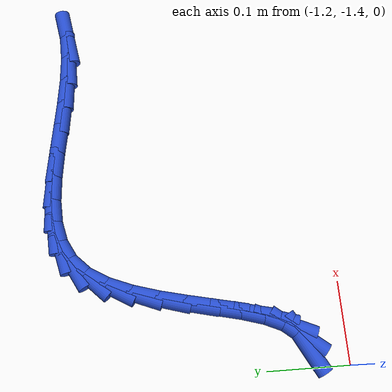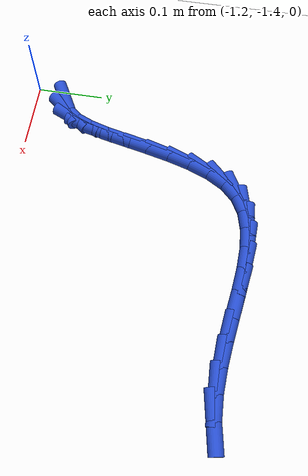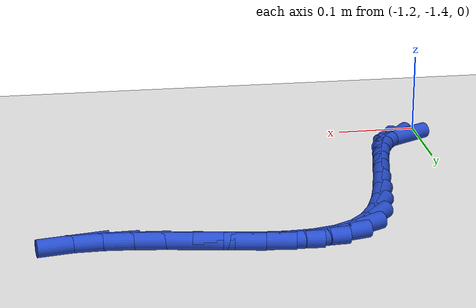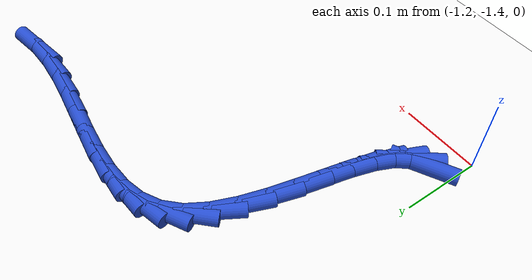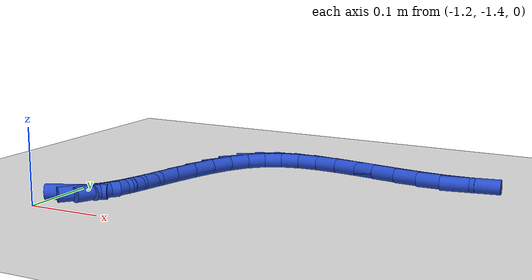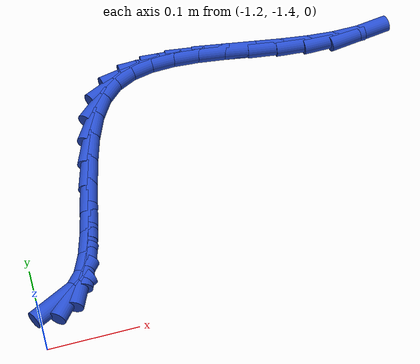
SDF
<sdf version="1.6">
 <world name="default">
  <model name="ground_plane">
   <static>1</static>
   <link name="link">
    <collision name="collision">
     <geometry><plane><normal>0 0 1</normal><size>100 100</size></plane></geometry>
     <surface><friction><ode><mu>100</mu><mu2>50</mu2></ode></friction></surface>
    </collision>
    <visual name="visual">
     <cast_shadows>0</cast_shadows>
     <geometry><plane><normal>0 0 1</normal><size>100 100</size></plane></geometry>
     <material>
      <script><uri>file://media/materials/scripts/gazebo.material</uri><name>Gazebo/WhiteGlow</name></script>
     </material>
    </visual>
   </link>
  </model>
  <model name="line">
   <link name="link_194">
    <pose>-1.17153843917894 -1.3485133944615877 0.01 0 1.57 0.4911980719038552</pose>
    <collision name="collision">
     <geometry><cylinder><radius>0.01</radius><length>0.08</length></cylinder></geometry>
    </collision>
    <visual name="visual">
     <material>
      <script><name>Gazebo/Blue</name><uri>file://media/materials/scripts/gazebo.material</uri></script>
     </material>
     <geometry><cylinder><radius>0.01</radius><length>0.08</length></cylinder></geometry>
    </visual>
   </link>
   <link name="link_195">
    <pose>-1.1575334913717588 -1.3410217549246688 0.01 0 1.57 0.8902119285465836</pose>
    <collision name="collision">
     <geometry><cylinder><radius>0.01</radius><length>0.08</length></cylinder></geometry>
    </collision>
    <visual name="visual">
     <material>
      <script><name>Gazebo/Blue</name><uri>file://media/materials/scripts/gazebo.material</uri></script>
     </material>
     <geometry><cylinder><radius>0.01</radius><length>0.08</length></cylinder></geometry>
    </visual>
   </link>
   <link name="link_196">
    <pose>-1.1457645811699726 -1.3264855672398246 0.01 0 1.57 1.1540427149402526</pose>
    <collision name="collision">
     <geometry><cylinder><radius>0.01</radius><length>0.08</length></cylinder></geometry>
    </collision>
    <visual name="visual">
     <material>
      <script><name>Gazebo/Blue</name><uri>file://media/materials/scripts/gazebo.material</uri></script>
     </material>
     <geometry><cylinder><radius>0.01</radius><length>0.08</length></cylinder></geometry>
    </visual>
   </link>
   <link name="link_197">
    <pose>-1.1361601734354305 -1.304789730385893 0.01 0 1.57 1.2837115934446002</pose>
    <collision name="collision">
     <geometry><cylinder><radius>0.01</radius><length>0.08</length></cylinder></geometry>
    </collision>
    <visual name="visual">
     <material>
      <script><name>Gazebo/Blue</name><uri>file://media/materials/scripts/gazebo.material</uri></script>
     </material>
     <geometry><cylinder><radius>0.01</radius><length>0.08</length></cylinder></geometry>
    </visual>
   </link>
   <link name="link_198">
    <pose>-1.1280685717494634 -1.2773829310112017 0.01 0 1.57 1.341081516217357</pose>
    <collision name="collision">
     <geometry><cylinder><radius>0.01</radius><length>0.08</length></cylinder></geometry>
    </collision>
    <visual name="visual">
     <material>
      <script><name>Gazebo/Blue</name><uri>file://media/materials/scripts/gazebo.material</uri></script>
     </material>
     <geometry><cylinder><radius>0.01</radius><length>0.08</length></cylinder></geometry>
    </visual>
   </link>
   <link name="link_199">
    <pose>-1.1207306855414743 -1.2460033298399935 0.01 0 1.57 1.3557184120897043</pose>
    <collision name="collision">
     <geometry><cylinder><radius>0.01</radius><length>0.08</length></cylinder></geometry>
    </collision>
    <visual name="visual">
     <material>
      <script><name>Gazebo/Blue</name><uri>file://media/materials/scripts/gazebo.material</uri></script>
     </material>
     <geometry><cylinder><radius>0.01</radius><length>0.08</length></cylinder></geometry>
    </visual>
   </link>
   <link name="link_200">
    <pose>-1.1133874242408655 -1.2123890875965129 0.01 0 1.57 1.3374380853289136</pose>
    <collision name="collision">
     <geometry><cylinder><radius>0.01</radius><length>0.08</length></cylinder></geometry>
    </collision>
    <visual name="visual">
     <material>
      <script><name>Gazebo/Blue</name><uri>file://media/materials/scripts/gazebo.material</uri></script>
     </material>
     <geometry><cylinder><radius>0.01</radius><length>0.08</length></cylinder></geometry>
    </visual>
   </link>
   <link name="link_201">
    <pose>-1.1052796972770398 -1.178278365005003 0.01 0 1.57 1.2857555393090079</pose>
    <collision name="collision">
     <geometry><cylinder><radius>0.01</radius><length>0.08</length></cylinder></geometry>
    </collision>
    <visual name="visual">
     <material>
      <script><name>Gazebo/Blue</name><uri>file://media/materials/scripts/gazebo.material</uri></script>
     </material>
     <geometry><cylinder><radius>0.01</radius><length>0.08</length></cylinder></geometry>
    </visual>
   </link>
   <link name="link_202">
    <pose>-1.0956484140794003 -1.1454093227897089 0.01 0 1.57 1.1914947021576008</pose>
    <collision name="collision">
     <geometry><cylinder><radius>0.01</radius><length>0.08</length></cylinder></geometry>
    </collision>
    <visual name="visual">
     <material>
      <script><name>Gazebo/Blue</name><uri>file://media/materials/scripts/gazebo.material</uri></script>
     </material>
     <geometry><cylinder><radius>0.01</radius><length>0.08</length></cylinder></geometry>
    </visual>
   </link>
   <link name="link_203">
    <pose>-1.0837344840773493 -1.1155201216748731 0.01 0 1.57 1.03468354820428</pose>
    <collision name="collision">
     <geometry><cylinder><radius>0.01</radius><length>0.08</length></cylinder></geometry>
    </collision>
    <visual name="visual">
     <material>
      <script><name>Gazebo/Blue</name><uri>file://media/materials/scripts/gazebo.material</uri></script>
     </material>
     <geometry><cylinder><radius>0.01</radius><length>0.08</length></cylinder></geometry>
    </visual>
   </link>
   <link name="link_204">
    <pose>-1.0687788167002896 -1.090348922384739 0.01 0 1.57 0.786309092393931</pose>
    <collision name="collision">
     <geometry><cylinder><radius>0.01</radius><length>0.08</length></cylinder></geometry>
    </collision>
    <visual name="visual">
     <material>
      <script><name>Gazebo/Blue</name><uri>file://media/materials/scripts/gazebo.material</uri></script>
     </material>
     <geometry><cylinder><radius>0.01</radius><length>0.08</length></cylinder></geometry>
    </visual>
   </link>
   <link name="link_205">
    <pose>-1.0500462010564702 -1.071582147449242 0.01 0 1.57 0.4876877038537302</pose>
    <collision name="collision">
     <geometry><cylinder><radius>0.01</radius><length>0.08</length></cylinder></geometry>
    </collision>
    <visual name="visual">
     <material>
      <script><name>Gazebo/Blue</name><uri>file://media/materials/scripts/gazebo.material</uri></script>
     </material>
     <geometry><cylinder><radius>0.01</radius><length>0.08</length></cylinder></geometry>
    </visual>
   </link>
   <link name="link_206">
    <pose>-1.0274145438207183 -1.0595778264999194 0.01 0 1.57 0.237491066198097</pose>
    <collision name="collision">
     <geometry><cylinder><radius>0.01</radius><length>0.08</length></cylinder></geometry>
    </collision>
    <visual name="visual">
     <material>
      <script><name>Gazebo/Blue</name><uri>file://media/materials/scripts/gazebo.material</uri></script>
     </material>
     <geometry><cylinder><radius>0.01</radius><length>0.08</length></cylinder></geometry>
    </visual>
   </link>
   <link name="link_207">
    <pose>-1.0014126123736349 -1.0532838212225148 0.01 0 1.57 0.05907111496806254</pose>
    <collision name="collision">
     <geometry><cylinder><radius>0.01</radius><length>0.08</length></cylinder></geometry>
    </collision>
    <visual name="visual">
     <material>
      <script><name>Gazebo/Blue</name><uri>file://media/materials/scripts/gazebo.material</uri></script>
     </material>
     <geometry><cylinder><radius>0.01</radius><length>0.08</length></cylinder></geometry>
    </visual>
   </link>
   <link name="link_208">
    <pose>-0.9726006108483984 -1.0515798817999378 0.01 0 1.57 -0.05678917679319339</pose>
    <collision name="collision">
     <geometry><cylinder><radius>0.01</radius><length>0.08</length></cylinder></geometry>
    </collision>
    <visual name="visual">
     <material>
      <script><name>Gazebo/Blue</name><uri>file://media/materials/scripts/gazebo.material</uri></script>
     </material>
     <geometry><cylinder><radius>0.01</radius><length>0.08</length></cylinder></geometry>
    </visual>
   </link>
   <link name="link_209">
    <pose>-0.9415387433781885 -1.0533457584150978 0.01 0 1.57 -0.1250013511466199</pose>
    <collision name="collision">
     <geometry><cylinder><radius>0.01</radius><length>0.08</length></cylinder></geometry>
    </collision>
    <visual name="visual">
     <material>
      <script><name>Gazebo/Blue</name><uri>file://media/materials/scripts/gazebo.material</uri></script>
     </material>
     <geometry><cylinder><radius>0.01</radius><length>0.08</length></cylinder></geometry>
    </visual>
   </link>
   <link name="link_210">
    <pose>-0.9087872140961838 -1.0574612012509044 0.01 0 1.57 -0.1564616236991802</pose>
    <collision name="collision">
     <geometry><cylinder><radius>0.01</radius><length>0.08</length></cylinder></geometry>
    </collision>
    <visual name="visual">
     <material>
      <script><name>Gazebo/Blue</name><uri>file://media/materials/scripts/gazebo.material</uri></script>
     </material>
     <geometry><cylinder><radius>0.01</radius><length>0.08</length></cylinder></geometry>
    </visual>
   </link>
   <link name="link_211">
    <pose>-0.8749062271355634 -1.0628059604902662 0.01 0 1.57 -0.15700724686223852</pose>
    <collision name="collision">
     <geometry><cylinder><radius>0.01</radius><length>0.08</length></cylinder></geometry>
    </collision>
    <visual name="visual">
     <material>
      <script><name>Gazebo/Blue</name><uri>file://media/materials/scripts/gazebo.material</uri></script>
     </material>
     <geometry><cylinder><radius>0.01</radius><length>0.08</length></cylinder></geometry>
    </visual>
   </link>
   <link name="link_212">
    <pose>-0.8404559866295067 -1.0682597863160934 0.01 0 1.57 -0.12821711505828817</pose>
    <collision name="collision">
     <geometry><cylinder><radius>0.01</radius><length>0.08</length></cylinder></geometry>
    </collision>
    <visual name="visual">
     <material>
      <script><name>Gazebo/Blue</name><uri>file://media/materials/scripts/gazebo.material</uri></script>
     </material>
     <geometry><cylinder><radius>0.01</radius><length>0.08</length></cylinder></geometry>
    </visual>
   </link>
   <link name="link_213">
    <pose>-0.8059966967111911 -1.0727024289112954 0.01 0 1.57 -0.06805565254845918</pose>
    <collision name="collision">
     <geometry><cylinder><radius>0.01</radius><length>0.08</length></cylinder></geometry>
    </collision>
    <visual name="visual">
     <material>
      <script><name>Gazebo/Blue</name><uri>file://media/materials/scripts/gazebo.material</uri></script>
     </material>
     <geometry><cylinder><radius>0.01</radius><length>0.08</length></cylinder></geometry>
    </visual>
   </link>
   <link name="link_214">
    <pose>-0.7720885615137985 -1.0750136384587814 0.01 0 1.57 0.028667929147861065</pose>
    <collision name="collision">
     <geometry><cylinder><radius>0.01</radius><length>0.08</length></cylinder></geometry>
    </collision>
    <visual name="visual">
     <material>
      <script><name>Gazebo/Blue</name><uri>file://media/materials/scripts/gazebo.material</uri></script>
     </material>
     <geometry><cylinder><radius>0.01</radius><length>0.08</length></cylinder></geometry>
    </visual>
   </link>
   <link name="link_215">
    <pose>-0.739291785170506 -1.0740731651414603 0.01 0 1.57 0.16904956494876686</pose>
    <collision name="collision">
     <geometry><cylinder><radius>0.01</radius><length>0.08</length></cylinder></geometry>
    </collision>
    <visual name="visual">
     <material>
      <script><name>Gazebo/Blue</name><uri>file://media/materials/scripts/gazebo.material</uri></script>
     </material>
     <geometry><cylinder><radius>0.01</radius><length>0.08</length></cylinder></geometry>
    </visual>
   </link>
  </model>
 </world>
</sdf>
